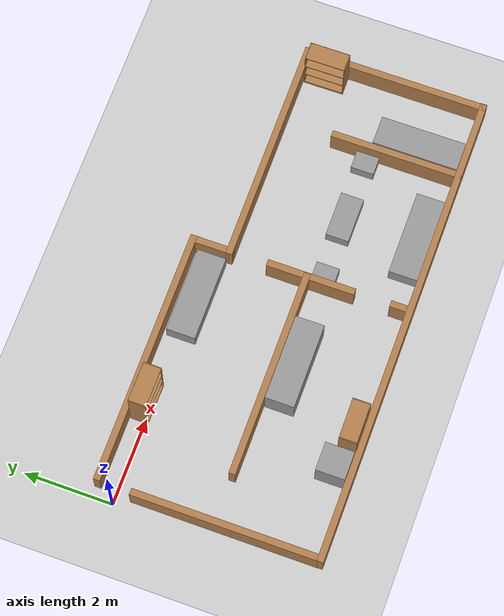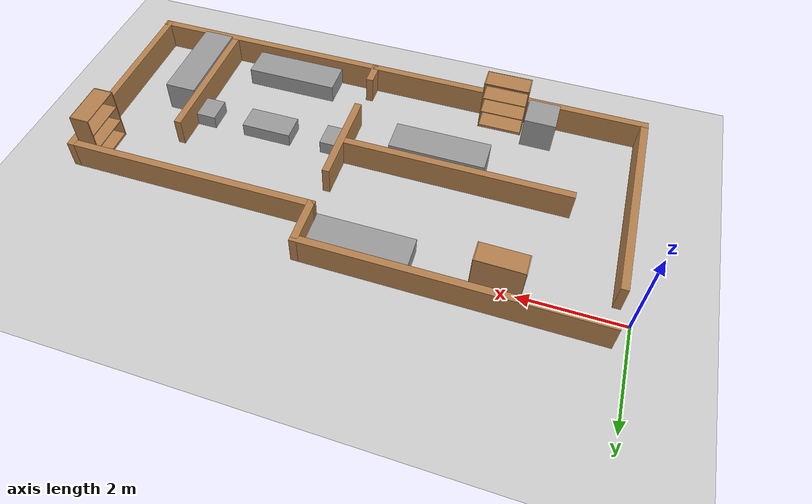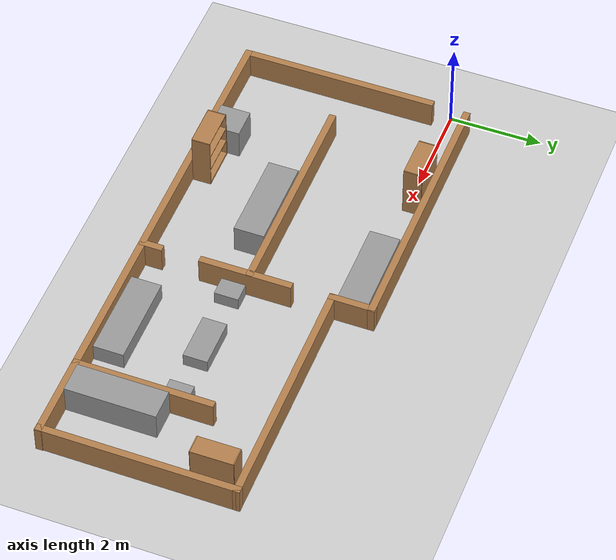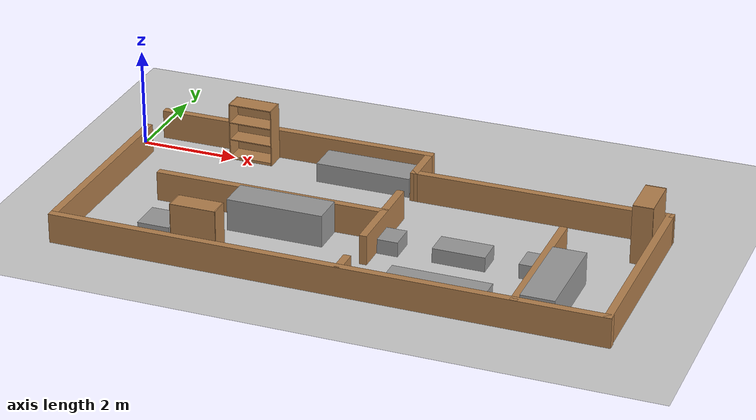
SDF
<sdf version="1.7">
 <world name="default">
  <light name="sun" type="directional">
   <pose>0 0 10 0 -0 0</pose>
   <diffuse>0.8 0.8 0.8 1</diffuse>
   <specular>0.2 0.2 0.2 1</specular>
   <attenuation>
    <range>1000</range>
    <constant>0.9</constant>
    <linear>0.01</linear>
    <quadratic>0.001</quadratic>
   </attenuation>
   <direction>-0.5 0.1 -0.9</direction>
   <spot><inner_angle>0</inner_angle><outer_angle>0</outer_angle><falloff>0</falloff></spot>
  </light>
  <model name="ground_plane">
   <static>1</static>
   <link name="link">
    <collision name="collision">
     <geometry><plane><normal>0 0 1</normal><size>100 100</size></plane></geometry>
     <surface>
      <contact><collide_bitmask>65535</collide_bitmask></contact>
      <friction><ode><mu>100</mu><mu2>50</mu2></ode></friction>
     </surface>
    </collision>
    <visual name="visual">
     <cast_shadows>0</cast_shadows>
     <geometry><plane><normal>0 0 1</normal><size>100 100</size></plane></geometry>
     <material>
      <script><uri>file://media/materials/scripts/gazebo.material</uri><name>Gazebo/Grey</name></script>
     </material>
    </visual>
   </link>
  </model>
  <gravity>0 0 -9.8</gravity>
  <magnetic_field>6e-06 2.3e-05 -4.2e-05</magnetic_field>
  <atmosphere type="adiabatic"/>
  <physics type="ode">
   <max_step_size>0.001</max_step_size>
   <real_time_factor>1</real_time_factor>
   <real_time_update_rate>1000</real_time_update_rate>
  </physics>
  <scene><ambient>0.4 0.4 0.4 1</ambient><background>0.7 0.7 0.7 1</background><shadows>1</shadows></scene>
  <spherical_coordinates>
   <surface_model>EARTH_WGS84</surface_model>
   <latitude_deg>0</latitude_deg>
   <longitude_deg>0</longitude_deg>
   <elevation>0</elevation>
   <heading_deg>0</heading_deg>
  </spherical_coordinates>
  <model name="LAR_test">
   <pose>5.594 -2.047 0 0 -0 0</pose>
   <link name="Wall_76">
    <collision name="Wall_76_Collision">
     <geometry><box><size>5.82713 0.15 0.6</size></box></geometry>
     <pose>0 0 0.3 0 -0 0</pose>
    </collision>
    <visual name="Wall_76_Visual">
     <pose>0 0 0.3 0 -0 0</pose>
     <geometry><box><size>5.82713 0.15 0.6</size></box></geometry>
     <material>
      <script><uri>file://media/materials/scripts/gazebo.material</uri><name>Gazebo/Wood</name></script>
      <ambient>1 1 1 1</ambient>
     </material>
     <meta><layer>0</layer></meta>
    </visual>
    <pose>-2.4315 2.473 0 0 -0 3.14159</pose>
   </link>
   <link name="Wall_78">
    <collision name="Wall_78_Collision">
     <geometry><box><size>1 0.15 0.6</size></box></geometry>
     <pose>0 0 0.3 0 -0 0</pose>
    </collision>
    <visual name="Wall_78_Visual">
     <pose>0 0 0.3 0 -0 0</pose>
     <geometry><box><size>1 0.15 0.6</size></box></geometry>
     <material>
      <script><uri>file://media/materials/scripts/gazebo.material</uri><name>Gazebo/Wood</name></script>
      <ambient>1 1 1 1</ambient>
     </material>
     <meta><layer>0</layer></meta>
    </visual>
    <pose>0.407 2.048 0 0 -0 -1.5708</pose>
   </link>
   <link name="Wall_80">
    <collision name="Wall_80_Collision">
     <geometry><box><size>5.25 0.15 0.6</size></box></geometry>
     <pose>0 0 0.3 0 -0 0</pose>
    </collision>
    <visual name="Wall_80_Visual">
     <pose>0 0 0.3 0 -0 0</pose>
     <geometry><box><size>5.25 0.15 0.6</size></box></geometry>
     <material>
      <script><uri>file://media/materials/scripts/gazebo.material</uri><name>Gazebo/Wood</name></script>
      <ambient>1 1 1 1</ambient>
     </material>
     <meta><layer>0</layer></meta>
    </visual>
    <pose>2.957 1.6285 0 0 -0 0.002157</pose>
   </link>
   <link name="Wall_82">
    <collision name="Wall_82_Collision">
     <geometry><box><size>4.24965 0.15 0.6</size></box></geometry>
     <pose>0 0 0.3 0 -0 0</pose>
    </collision>
    <visual name="Wall_82_Visual">
     <pose>0 0 0.3 0 -0 0</pose>
     <geometry><box><size>4.24965 0.15 0.6</size></box></geometry>
     <material>
      <script><uri>file://media/materials/scripts/gazebo.material</uri><name>Gazebo/Wood</name></script>
      <ambient>1 1 1 1</ambient>
     </material>
     <meta><layer>0</layer></meta>
    </visual>
    <pose>5.507 -0.4155 0 0 -0 -1.5708</pose>
   </link>
   <link name="Wall_84">
    <collision name="Wall_84_Collision">
     <geometry><box><size>4.15 0.15 0.6</size></box></geometry>
     <pose>0 0 0.3 0 -0 0</pose>
    </collision>
    <visual name="Wall_84_Visual">
     <pose>0 0 0.3 0 -0 0</pose>
     <geometry><box><size>4.15 0.15 0.6</size></box></geometry>
     <material>
      <script><uri>file://media/materials/scripts/gazebo.material</uri><name>Gazebo/Wood</name></script>
      <ambient>1 1 1 1</ambient>
     </material>
     <meta><layer>0</layer></meta>
    </visual>
    <pose>-5.335 -0.35 0 0 -0 -1.5708</pose>
   </link>
   <link name="Wall_86">
    <collision name="Wall_86_Collision">
     <geometry><box><size>11 0.15 0.6</size></box></geometry>
     <pose>0 0 0.3 0 -0 0</pose>
    </collision>
    <visual name="Wall_86_Visual">
     <pose>0 0 0.3 0 -0 0</pose>
     <geometry><box><size>11 0.15 0.6</size></box></geometry>
     <material>
      <script><uri>file://media/materials/scripts/gazebo.material</uri><name>Gazebo/Wood</name></script>
      <ambient>1 1 1 1</ambient>
     </material>
     <meta><layer>0</layer></meta>
    </visual>
    <pose>0.094 -2.473 0 0 -0 0</pose>
   </link>
   <link name="Wall_91">
    <collision name="Wall_91_Collision">
     <geometry><box><size>2 0.15 0.6</size></box></geometry>
     <pose>0 0 0.3 0 -0 0</pose>
    </collision>
    <visual name="Wall_91_Visual">
     <pose>0 0 0.3 0 -0 0</pose>
     <geometry><box><size>2 0.15 0.6</size></box></geometry>
     <material>
      <script><uri>file://media/materials/scripts/gazebo.material</uri><name>Gazebo/Wood</name></script>
      <ambient>1 1 1 1</ambient>
     </material>
     <meta><layer>0</layer></meta>
    </visual>
    <pose>0.426 -0.226 0 0 -0 -1.5708</pose>
   </link>
   <link name="Wall_93">
    <collision name="Wall_93_Collision">
     <geometry><box><size>0.5 0.15 0.6</size></box></geometry>
     <pose>0 0 0.3 0 -0 0</pose>
    </collision>
    <visual name="Wall_93_Visual">
     <pose>0 0 0.3 0 -0 0</pose>
     <geometry><box><size>0.5 0.15 0.6</size></box></geometry>
     <material>
      <script><uri>file://media/materials/scripts/gazebo.material</uri><name>Gazebo/Wood</name></script>
      <ambient>1 1 1 1</ambient>
     </material>
     <meta><layer>0</layer></meta>
    </visual>
    <pose>0.437 -2.276 0 0 -0 1.5708</pose>
   </link>
   <link name="Wall_96">
    <collision name="Wall_96_Collision">
     <geometry><box><size>4.75 0.15 0.6</size></box></geometry>
     <pose>0 0 0.3 0 -0 0</pose>
    </collision>
    <visual name="Wall_96_Visual">
     <pose>0 0 0.3 0 -0 0</pose>
     <geometry><box><size>4.75 0.15 0.6</size></box></geometry>
     <material>
      <script><uri>file://media/materials/scripts/gazebo.material</uri><name>Gazebo/Wood</name></script>
      <ambient>1 1 1 1</ambient>
     </material>
     <meta><layer>0</layer></meta>
    </visual>
    <pose>-1.886 -0.131 0 0 -0 3.14159</pose>
   </link>
   <link name="Wall_98">
    <collision name="Wall_98_Collision">
     <geometry><box><size>3 0.15 0.6</size></box></geometry>
     <pose>0 0 0.3 0 -0 0</pose>
    </collision>
    <visual name="Wall_98_Visual">
     <pose>0 0 0.3 0 -0 0</pose>
     <geometry><box><size>3 0.15 0.6</size></box></geometry>
     <material>
      <script><uri>file://media/materials/scripts/gazebo.material</uri><name>Gazebo/Wood</name></script>
      <ambient>1 1 1 1</ambient>
     </material>
     <meta><layer>0</layer></meta>
    </visual>
    <pose>3.78 -1.037 0 0 -0 1.5708</pose>
   </link>
   <static>1</static>
  </model>
  <model name="bookshelf">
   <static>1</static>
   <link name="link">
    <inertial><mass>1</mass></inertial>
    <collision name="back">
     <pose>0 0.005 0.6 0 -0 0</pose>
     <geometry><box><size>0.9 0.01 1.2</size></box></geometry>
    </collision>
    <visual name="visual1">
     <pose>0 0.005 0.6 0 -0 0</pose>
     <geometry><box><size>0.9 0.01 1.2</size></box></geometry>
     <material>
      <script><uri>file://media/materials/scripts/gazebo.material</uri><name>Gazebo/Wood</name></script>
     </material>
    </visual>
    <collision name="left_side">
     <pose>0.45 -0.195 0.6 0 -0 0</pose>
     <geometry><box><size>0.02 0.4 1.2</size></box></geometry>
    </collision>
    <visual name="visual2">
     <pose>0.45 -0.195 0.6 0 -0 0</pose>
     <geometry><box><size>0.02 0.4 1.2</size></box></geometry>
     <material>
      <script><uri>file://media/materials/scripts/gazebo.material</uri><name>Gazebo/Wood</name></script>
     </material>
    </visual>
    <collision name="right_side">
     <pose>-0.45 -0.195 0.6 0 -0 0</pose>
     <geometry><box><size>0.02 0.4 1.2</size></box></geometry>
    </collision>
    <visual name="visual3">
     <pose>-0.45 -0.195 0.6 0 -0 0</pose>
     <geometry><box><size>0.02 0.4 1.2</size></box></geometry>
     <material>
      <script><uri>file://media/materials/scripts/gazebo.material</uri><name>Gazebo/Wood</name></script>
     </material>
    </visual>
    <collision name="bottom">
     <pose>0 -0.195 0.03 0 -0 0</pose>
     <geometry><box><size>0.88 0.4 0.06</size></box></geometry>
    </collision>
    <visual name="visual4">
     <pose>0 -0.195 0.03 0 -0 0</pose>
     <geometry><box><size>0.88 0.4 0.06</size></box></geometry>
     <material>
      <script><uri>file://media/materials/scripts/gazebo.material</uri><name>Gazebo/Wood</name></script>
     </material>
    </visual>
    <collision name="top">
     <pose>0 -0.195 1.19 0 -0 0</pose>
     <geometry><box><size>0.88 0.4 0.02</size></box></geometry>
    </collision>
    <visual name="visual5">
     <pose>0 -0.195 1.19 0 -0 0</pose>
     <geometry><box><size>0.88 0.4 0.02</size></box></geometry>
     <material>
      <script><uri>file://media/materials/scripts/gazebo.material</uri><name>Gazebo/Wood</name></script>
     </material>
    </visual>
    <collision name="low_shelf">
     <pose>0 -0.195 0.43 0 -0 0</pose>
     <geometry><box><size>0.88 0.4 0.02</size></box></geometry>
    </collision>
    <visual name="visual6">
     <pose>0 -0.195 0.43 0 -0 0</pose>
     <geometry><box><size>0.88 0.4 0.02</size></box></geometry>
     <material>
      <script><uri>file://media/materials/scripts/gazebo.material</uri><name>Gazebo/Wood</name></script>
     </material>
    </visual>
    <collision name="high_shelf">
     <pose>0 -0.195 0.8 0 -0 0</pose>
     <geometry><box><size>0.88 0.4 0.02</size></box></geometry>
    </collision>
    <visual name="visual7">
     <pose>0 -0.195 0.8 0 -0 0</pose>
     <geometry><box><size>0.88 0.4 0.02</size></box></geometry>
     <material>
      <script><uri>file://media/materials/scripts/gazebo.material</uri><name>Gazebo/Wood</name></script>
     </material>
    </visual>
   </link>
   <pose>3.11135 -4.44158 0 0 0 -3.13518</pose>
  </model>
  <model name="bookshelf_0">
   <static>1</static>
   <link name="link">
    <inertial><mass>1</mass></inertial>
    <collision name="back">
     <pose>0 0.005 0.6 0 -0 0</pose>
     <geometry><box><size>0.9 0.01 1.2</size></box></geometry>
    </collision>
    <visual name="visual1">
     <pose>0 0.005 0.6 0 -0 0</pose>
     <geometry><box><size>0.9 0.01 1.2</size></box></geometry>
     <material>
      <script><uri>file://media/materials/scripts/gazebo.material</uri><name>Gazebo/Wood</name></script>
     </material>
    </visual>
    <collision name="left_side">
     <pose>0.45 -0.195 0.6 0 -0 0</pose>
     <geometry><box><size>0.02 0.4 1.2</size></box></geometry>
    </collision>
    <visual name="visual2">
     <pose>0.45 -0.195 0.6 0 -0 0</pose>
     <geometry><box><size>0.02 0.4 1.2</size></box></geometry>
     <material>
      <script><uri>file://media/materials/scripts/gazebo.material</uri><name>Gazebo/Wood</name></script>
     </material>
    </visual>
    <collision name="right_side">
     <pose>-0.45 -0.195 0.6 0 -0 0</pose>
     <geometry><box><size>0.02 0.4 1.2</size></box></geometry>
    </collision>
    <visual name="visual3">
     <pose>-0.45 -0.195 0.6 0 -0 0</pose>
     <geometry><box><size>0.02 0.4 1.2</size></box></geometry>
     <material>
      <script><uri>file://media/materials/scripts/gazebo.material</uri><name>Gazebo/Wood</name></script>
     </material>
    </visual>
    <collision name="bottom">
     <pose>0 -0.195 0.03 0 -0 0</pose>
     <geometry><box><size>0.88 0.4 0.06</size></box></geometry>
    </collision>
    <visual name="visual4">
     <pose>0 -0.195 0.03 0 -0 0</pose>
     <geometry><box><size>0.88 0.4 0.06</size></box></geometry>
     <material>
      <script><uri>file://media/materials/scripts/gazebo.material</uri><name>Gazebo/Wood</name></script>
     </material>
    </visual>
    <collision name="top">
     <pose>0 -0.195 1.19 0 -0 0</pose>
     <geometry><box><size>0.88 0.4 0.02</size></box></geometry>
    </collision>
    <visual name="visual5">
     <pose>0 -0.195 1.19 0 -0 0</pose>
     <geometry><box><size>0.88 0.4 0.02</size></box></geometry>
     <material>
      <script><uri>file://media/materials/scripts/gazebo.material</uri><name>Gazebo/Wood</name></script>
     </material>
    </visual>
    <collision name="low_shelf">
     <pose>0 -0.195 0.43 0 -0 0</pose>
     <geometry><box><size>0.88 0.4 0.02</size></box></geometry>
    </collision>
    <visual name="visual6">
     <pose>0 -0.195 0.43 0 -0 0</pose>
     <geometry><box><size>0.88 0.4 0.02</size></box></geometry>
     <material>
      <script><uri>file://media/materials/scripts/gazebo.material</uri><name>Gazebo/Wood</name></script>
     </material>
    </visual>
    <collision name="high_shelf">
     <pose>0 -0.195 0.8 0 -0 0</pose>
     <geometry><box><size>0.88 0.4 0.02</size></box></geometry>
    </collision>
    <visual name="visual7">
     <pose>0 -0.195 0.8 0 -0 0</pose>
     <geometry><box><size>0.88 0.4 0.02</size></box></geometry>
     <material>
      <script><uri>file://media/materials/scripts/gazebo.material</uri><name>Gazebo/Wood</name></script>
     </material>
    </visual>
   </link>
   <pose>11.0152 -0.959558 0 0 0 -1.56507</pose>
  </model>
  <model name="unit_box_1">
   <link name="link">
    <inertial>
     <mass>1</mass>
     <inertia>
      <ixx>0.166667</ixx>
      <ixy>0</ixy>
      <ixz>0</ixz>
      <iyy>0.166667</iyy>
      <iyz>0</iyz>
      <izz>0.166667</izz>
     </inertia>
    </inertial>
    <visual name="visual">
     <geometry><box><size>1.94128 0.654649 0.397354</size></box></geometry>
     <material>
      <script><name>Gazebo/Grey</name><uri>file://media/materials/scripts/gazebo.material</uri></script>
      <shader type="pixel"><normal_map>__default__</normal_map></shader>
      <ambient>0.729 0.741 0.714 1</ambient>
      <diffuse>0.7 0.7 0.7 1</diffuse>
      <specular>0.01 0.01 0.01 1</specular>
      <emissive>0 0 0 1</emissive>
     </material>
    </visual>
    <collision name="collision">
     <geometry><box><size>1.94128 0.654649 0.397354</size></box></geometry>
     <surface>
      <friction>
       <ode><mu>1</mu><mu2>1</mu2><fdir1>0 0 0</fdir1><slip1>0</slip1><slip2>0</slip2></ode>
       <torsional>
        <coefficient>1</coefficient>
        <patch_radius>0</patch_radius>
        <surface_radius>0</surface_radius>
        <use_patch_radius>1</use_patch_radius>
        <ode><slip>0</slip></ode>
       </torsional>
      </friction>
      <bounce><restitution_coefficient>0</restitution_coefficient><threshold>1e+06</threshold></bounce>
      <contact>
       <collide_without_contact>0</collide_without_contact>
       <collide_without_contact_bitmask>1</collide_without_contact_bitmask>
       <collide_bitmask>1</collide_bitmask>
       <ode>
        <soft_cfm>0</soft_cfm>
        <soft_erp>0.2</soft_erp>
        <kp>1e+13</kp>
        <kd>1</kd>
        <max_vel>0.01</max_vel>
        <min_depth>0</min_depth>
       </ode>
       <bullet>
        <split_impulse>1</split_impulse>
        <split_impulse_penetration_threshold>-0.01</split_impulse_penetration_threshold>
        <soft_cfm>0</soft_cfm>
        <soft_erp>0.2</soft_erp>
        <kp>1e+13</kp>
        <kd>1</kd>
       </bullet>
      </contact>
     </surface>
    </collision>
   </link>
   <static>0</static>
   <pose>7.76468 -4.1147 0.198676 3e-06 -0 0</pose>
  </model>
  <model name="unit_box_1_clone">
   <link name="link">
    <inertial>
     <mass>1</mass>
     <inertia>
      <ixx>0.166667</ixx>
      <ixy>0</ixy>
      <ixz>0</ixz>
      <iyy>0.166667</iyy>
      <iyz>0</iyz>
      <izz>0.166667</izz>
     </inertia>
    </inertial>
    <visual name="visual">
     <geometry><box><size>1.94129 0.654649 0.397354</size></box></geometry>
     <material>
      <script><name>Gazebo/Grey</name><uri>file://media/materials/scripts/gazebo.material</uri></script>
      <shader type="pixel"><normal_map>__default__</normal_map></shader>
      <ambient>0.729 0.741 0.714 1</ambient>
      <diffuse>0.7 0.7 0.7 1</diffuse>
      <specular>0.01 0.01 0.01 1</specular>
      <emissive>0 0 0 1</emissive>
     </material>
    </visual>
    <collision name="collision">
     <geometry><box><size>1.94129 0.654649 0.397354</size></box></geometry>
     <surface>
      <friction>
       <ode><mu>1</mu><mu2>1</mu2><fdir1>0 0 0</fdir1><slip1>0</slip1><slip2>0</slip2></ode>
       <torsional>
        <coefficient>1</coefficient>
        <patch_radius>0</patch_radius>
        <surface_radius>0</surface_radius>
        <use_patch_radius>1</use_patch_radius>
        <ode><slip>0</slip></ode>
       </torsional>
      </friction>
      <bounce><restitution_coefficient>0</restitution_coefficient><threshold>1e+06</threshold></bounce>
      <contact>
       <collide_without_contact>0</collide_without_contact>
       <collide_without_contact_bitmask>1</collide_without_contact_bitmask>
       <collide_bitmask>1</collide_bitmask>
       <ode>
        <soft_cfm>0</soft_cfm>
        <soft_erp>0.2</soft_erp>
        <kp>1e+13</kp>
        <kd>1</kd>
        <max_vel>0.01</max_vel>
        <min_depth>0</min_depth>
       </ode>
       <bullet>
        <split_impulse>1</split_impulse>
        <split_impulse_penetration_threshold>-0.01</split_impulse_penetration_threshold>
        <soft_cfm>0</soft_cfm>
        <soft_erp>0.2</soft_erp>
        <kp>1e+13</kp>
        <kd>1</kd>
       </bullet>
      </contact>
     </surface>
    </collision>
   </link>
   <static>0</static>
   <pose>4.8933 -0.057546 0.198676 3e-06 -0 0</pose>
  </model>
  <model name="unit_box_1_clone_0">
   <link name="link">
    <inertial>
     <mass>1</mass>
     <inertia>
      <ixx>0.166667</ixx>
      <ixy>0</ixy>
      <ixz>0</ixz>
      <iyy>0.166667</iyy>
      <iyz>0</iyz>
      <izz>0.166667</izz>
     </inertia>
    </inertial>
    <visual name="visual">
     <geometry><box><size>1.94129 0.654649 0.65354</size></box></geometry>
     <material>
      <script><name>Gazebo/Grey</name><uri>file://media/materials/scripts/gazebo.material</uri></script>
      <shader type="pixel"><normal_map>__default__</normal_map></shader>
      <ambient>0.729 0.741 0.714 1</ambient>
      <diffuse>0.7 0.7 0.7 1</diffuse>
      <specular>0.01 0.01 0.01 1</specular>
      <emissive>0 0 0 1</emissive>
     </material>
    </visual>
    <collision name="collision">
     <geometry><box><size>1.94129 0.654649 0.65354</size></box></geometry>
     <surface>
      <friction>
       <ode><mu>1</mu><mu2>1</mu2><fdir1>0 0 0</fdir1><slip1>0</slip1><slip2>0</slip2></ode>
       <torsional>
        <coefficient>1</coefficient>
        <patch_radius>0</patch_radius>
        <surface_radius>0</surface_radius>
        <use_patch_radius>1</use_patch_radius>
        <ode><slip>0</slip></ode>
       </torsional>
      </friction>
      <bounce><restitution_coefficient>0</restitution_coefficient><threshold>1e+06</threshold></bounce>
      <contact>
       <collide_without_contact>0</collide_without_contact>
       <collide_without_contact_bitmask>1</collide_without_contact_bitmask>
       <collide_bitmask>1</collide_bitmask>
       <ode>
        <soft_cfm>0</soft_cfm>
        <soft_erp>0.2</soft_erp>
        <kp>1e+13</kp>
        <kd>1</kd>
        <max_vel>0.01</max_vel>
        <min_depth>0</min_depth>
       </ode>
       <bullet>
        <split_impulse>1</split_impulse>
        <split_impulse_penetration_threshold>-0.01</split_impulse_penetration_threshold>
        <soft_cfm>0</soft_cfm>
        <soft_erp>0.2</soft_erp>
        <kp>1e+13</kp>
        <kd>1</kd>
       </bullet>
      </contact>
     </surface>
    </collision>
   </link>
   <static>0</static>
   <pose>4.08465 -2.59077 0.32677 1e-06 -0 0</pose>
  </model>
  <model name="unit_box_1_clone_1">
   <link name="link">
    <inertial>
     <mass>1</mass>
     <inertia>
      <ixx>0.166667</ixx>
      <ixy>0</ixy>
      <ixz>0</ixz>
      <iyy>0.166667</iyy>
      <iyz>0</iyz>
      <izz>0.166667</izz>
     </inertia>
    </inertial>
    <visual name="visual">
     <geometry><box><size>0.642342 0.654649 0.68811</size></box></geometry>
     <material>
      <script><name>Gazebo/Grey</name><uri>file://media/materials/scripts/gazebo.material</uri></script>
      <shader type="pixel"><normal_map>__default__</normal_map></shader>
      <ambient>0.729 0.741 0.714 1</ambient>
      <diffuse>0.7 0.7 0.7 1</diffuse>
      <specular>0.01 0.01 0.01 1</specular>
      <emissive>0 0 0 1</emissive>
     </material>
    </visual>
    <collision name="collision">
     <geometry><box><size>0.642342 0.654649 0.68811</size></box></geometry>
     <surface>
      <friction>
       <ode><mu>1</mu><mu2>1</mu2><fdir1>0 0 0</fdir1><slip1>0</slip1><slip2>0</slip2></ode>
       <torsional>
        <coefficient>1</coefficient>
        <patch_radius>0</patch_radius>
        <surface_radius>0</surface_radius>
        <use_patch_radius>1</use_patch_radius>
        <ode><slip>0</slip></ode>
       </torsional>
      </friction>
      <bounce><restitution_coefficient>0</restitution_coefficient><threshold>1e+06</threshold></bounce>
      <contact>
       <collide_without_contact>0</collide_without_contact>
       <collide_without_contact_bitmask>1</collide_without_contact_bitmask>
       <collide_bitmask>1</collide_bitmask>
       <ode>
        <soft_cfm>0</soft_cfm>
        <soft_erp>0.2</soft_erp>
        <kp>1e+13</kp>
        <kd>1</kd>
        <max_vel>0.01</max_vel>
        <min_depth>0</min_depth>
       </ode>
       <bullet>
        <split_impulse>1</split_impulse>
        <split_impulse_penetration_threshold>-0.01</split_impulse_penetration_threshold>
        <soft_cfm>0</soft_cfm>
        <soft_erp>0.2</soft_erp>
        <kp>1e+13</kp>
        <kd>1</kd>
       </bullet>
      </contact>
     </surface>
    </collision>
   </link>
   <static>0</static>
   <pose>2.2988 -4.1125 0.344055 0 -0 0</pose>
  </model>
  <model name="bookshelf_clone">
   <static>1</static>
   <link name="link">
    <inertial><mass>1</mass></inertial>
    <collision name="back">
     <pose>0 0.005 0.6 0 -0 0</pose>
     <geometry><box><size>0.9 0.01 1.2</size></box></geometry>
    </collision>
    <visual name="visual1">
     <pose>0 0.005 0.6 0 -0 0</pose>
     <geometry><box><size>0.9 0.01 1.2</size></box></geometry>
     <material>
      <script><uri>file://media/materials/scripts/gazebo.material</uri><name>Gazebo/Wood</name></script>
     </material>
    </visual>
    <collision name="left_side">
     <pose>0.45 -0.195 0.6 0 -0 0</pose>
     <geometry><box><size>0.02 0.4 1.2</size></box></geometry>
    </collision>
    <visual name="visual2">
     <pose>0.45 -0.195 0.6 0 -0 0</pose>
     <geometry><box><size>0.02 0.4 1.2</size></box></geometry>
     <material>
      <script><uri>file://media/materials/scripts/gazebo.material</uri><name>Gazebo/Wood</name></script>
     </material>
    </visual>
    <collision name="right_side">
     <pose>-0.45 -0.195 0.6 0 -0 0</pose>
     <geometry><box><size>0.02 0.4 1.2</size></box></geometry>
    </collision>
    <visual name="visual3">
     <pose>-0.45 -0.195 0.6 0 -0 0</pose>
     <geometry><box><size>0.02 0.4 1.2</size></box></geometry>
     <material>
      <script><uri>file://media/materials/scripts/gazebo.material</uri><name>Gazebo/Wood</name></script>
     </material>
    </visual>
    <collision name="bottom">
     <pose>0 -0.195 0.03 0 -0 0</pose>
     <geometry><box><size>0.88 0.4 0.06</size></box></geometry>
    </collision>
    <visual name="visual4">
     <pose>0 -0.195 0.03 0 -0 0</pose>
     <geometry><box><size>0.88 0.4 0.06</size></box></geometry>
     <material>
      <script><uri>file://media/materials/scripts/gazebo.material</uri><name>Gazebo/Wood</name></script>
     </material>
    </visual>
    <collision name="top">
     <pose>0 -0.195 1.19 0 -0 0</pose>
     <geometry><box><size>0.88 0.4 0.02</size></box></geometry>
    </collision>
    <visual name="visual5">
     <pose>0 -0.195 1.19 0 -0 0</pose>
     <geometry><box><size>0.88 0.4 0.02</size></box></geometry>
     <material>
      <script><uri>file://media/materials/scripts/gazebo.material</uri><name>Gazebo/Wood</name></script>
     </material>
    </visual>
    <collision name="low_shelf">
     <pose>0 -0.195 0.43 0 -0 0</pose>
     <geometry><box><size>0.88 0.4 0.02</size></box></geometry>
    </collision>
    <visual name="visual6">
     <pose>0 -0.195 0.43 0 -0 0</pose>
     <geometry><box><size>0.88 0.4 0.02</size></box></geometry>
     <material>
      <script><uri>file://media/materials/scripts/gazebo.material</uri><name>Gazebo/Wood</name></script>
     </material>
    </visual>
    <collision name="high_shelf">
     <pose>0 -0.195 0.8 0 -0 0</pose>
     <geometry><box><size>0.88 0.4 0.02</size></box></geometry>
    </collision>
    <visual name="visual7">
     <pose>0 -0.195 0.8 0 -0 0</pose>
     <geometry><box><size>0.88 0.4 0.02</size></box></geometry>
     <material>
      <script><uri>file://media/materials/scripts/gazebo.material</uri><name>Gazebo/Wood</name></script>
     </material>
    </visual>
   </link>
   <pose>2.36725 0.322419 -0 0 -0 -0.01041</pose>
  </model>
  <model name="unit_box_1_clone_2">
   <link name="link">
    <inertial>
     <mass>1</mass>
     <inertia>
      <ixx>0.166667</ixx>
      <ixy>0</ixy>
      <ixz>0</ixz>
      <iyy>0.166667</iyy>
      <iyz>0</iyz>
      <izz>0.166667</izz>
     </inertia>
    </inertial>
    <visual name="visual">
     <geometry><box><size>1.04025 0.52304 0.295985</size></box></geometry>
     <material>
      <script><name>Gazebo/Grey</name><uri>file://media/materials/scripts/gazebo.material</uri></script>
      <shader type="pixel"><normal_map>__default__</normal_map></shader>
      <ambient>0.729 0.741 0.714 1</ambient>
      <diffuse>0.7 0.7 0.7 1</diffuse>
      <specular>0.01 0.01 0.01 1</specular>
      <emissive>0 0 0 1</emissive>
     </material>
    </visual>
    <collision name="collision">
     <geometry><box><size>1.04025 0.52304 0.295985</size></box></geometry>
     <surface>
      <friction>
       <ode><mu>1</mu><mu2>1</mu2><fdir1>0 0 0</fdir1><slip1>0</slip1><slip2>0</slip2></ode>
       <torsional>
        <coefficient>1</coefficient>
        <patch_radius>0</patch_radius>
        <surface_radius>0</surface_radius>
        <use_patch_radius>1</use_patch_radius>
        <ode><slip>0</slip></ode>
       </torsional>
      </friction>
      <bounce><restitution_coefficient>0</restitution_coefficient><threshold>1e+06</threshold></bounce>
      <contact>
       <collide_without_contact>0</collide_without_contact>
       <collide_without_contact_bitmask>1</collide_without_contact_bitmask>
       <collide_bitmask>1</collide_bitmask>
       <ode>
        <soft_cfm>0</soft_cfm>
        <soft_erp>0.2</soft_erp>
        <kp>1e+13</kp>
        <kd>1</kd>
        <max_vel>0.01</max_vel>
        <min_depth>0</min_depth>
       </ode>
       <bullet>
        <split_impulse>1</split_impulse>
        <split_impulse_penetration_threshold>-0.01</split_impulse_penetration_threshold>
        <soft_cfm>0</soft_cfm>
        <soft_erp>0.2</soft_erp>
        <kp>1e+13</kp>
        <kd>1</kd>
       </bullet>
      </contact>
     </surface>
    </collision>
   </link>
   <static>0</static>
   <pose>7.70832 -2.47157 0.147992 -0 -0 -0</pose>
  </model>
  <model name="unit_box_1_clone_2_clone">
   <link name="link">
    <inertial>
     <mass>1</mass>
     <inertia>
      <ixx>0.166667</ixx>
      <ixy>0</ixy>
      <ixz>0</ixz>
      <iyy>0.166667</iyy>
      <iyz>0</iyz>
      <izz>0.166667</izz>
     </inertia>
    </inertial>
    <visual name="visual">
     <geometry><box><size>0.411162 0.52304 0.295985</size></box></geometry>
     <material>
      <script><name>Gazebo/Grey</name><uri>file://media/materials/scripts/gazebo.material</uri></script>
      <shader type="pixel"><normal_map>__default__</normal_map></shader>
      <ambient>0.729 0.741 0.714 1</ambient>
      <diffuse>0.7 0.7 0.7 1</diffuse>
      <specular>0.01 0.01 0.01 1</specular>
      <emissive>0 0 0 1</emissive>
     </material>
    </visual>
    <collision name="collision">
     <geometry><box><size>0.411162 0.52304 0.295985</size></box></geometry>
     <surface>
      <friction>
       <ode><mu>1</mu><mu2>1</mu2><fdir1>0 0 0</fdir1><slip1>0</slip1><slip2>0</slip2></ode>
       <torsional>
        <coefficient>1</coefficient>
        <patch_radius>0</patch_radius>
        <surface_radius>0</surface_radius>
        <use_patch_radius>1</use_patch_radius>
        <ode><slip>0</slip></ode>
       </torsional>
      </friction>
      <bounce><restitution_coefficient>0</restitution_coefficient><threshold>1e+06</threshold></bounce>
      <contact>
       <collide_without_contact>0</collide_without_contact>
       <collide_without_contact_bitmask>1</collide_without_contact_bitmask>
       <collide_bitmask>1</collide_bitmask>
       <ode>
        <soft_cfm>0</soft_cfm>
        <soft_erp>0.2</soft_erp>
        <kp>1e+13</kp>
        <kd>1</kd>
        <max_vel>0.01</max_vel>
        <min_depth>0</min_depth>
       </ode>
       <bullet>
        <split_impulse>1</split_impulse>
        <split_impulse_penetration_threshold>-0.01</split_impulse_penetration_threshold>
        <soft_cfm>0</soft_cfm>
        <soft_erp>0.2</soft_erp>
        <kp>1e+13</kp>
        <kd>1</kd>
       </bullet>
      </contact>
     </surface>
    </collision>
   </link>
   <static>0</static>
   <pose>9.08726 -2.46962 0.147992 0 -0 0</pose>
  </model>
  <model name="unit_box_1_clone_2_clone_clone">
   <link name="link">
    <inertial>
     <mass>1</mass>
     <inertia>
      <ixx>0.166667</ixx>
      <ixy>0</ixy>
      <ixz>0</ixz>
      <iyy>0.166667</iyy>
      <iyz>0</iyz>
      <izz>0.166667</izz>
     </inertia>
    </inertial>
    <visual name="visual">
     <geometry><box><size>0.411162 0.52304 0.295985</size></box></geometry>
     <material>
      <script><name>Gazebo/Grey</name><uri>file://media/materials/scripts/gazebo.material</uri></script>
      <shader type="pixel"><normal_map>__default__</normal_map></shader>
      <ambient>0.729 0.741 0.714 1</ambient>
      <diffuse>0.7 0.7 0.7 1</diffuse>
      <specular>0.01 0.01 0.01 1</specular>
      <emissive>0 0 0 1</emissive>
     </material>
    </visual>
    <collision name="collision">
     <geometry><box><size>0.411162 0.52304 0.295985</size></box></geometry>
     <surface>
      <friction>
       <ode><mu>1</mu><mu2>1</mu2><fdir1>0 0 0</fdir1><slip1>0</slip1><slip2>0</slip2></ode>
       <torsional>
        <coefficient>1</coefficient>
        <patch_radius>0</patch_radius>
        <surface_radius>0</surface_radius>
        <use_patch_radius>1</use_patch_radius>
        <ode><slip>0</slip></ode>
       </torsional>
      </friction>
      <bounce><restitution_coefficient>0</restitution_coefficient><threshold>1e+06</threshold></bounce>
      <contact>
       <collide_without_contact>0</collide_without_contact>
       <collide_without_contact_bitmask>1</collide_without_contact_bitmask>
       <collide_bitmask>1</collide_bitmask>
       <ode>
        <soft_cfm>0</soft_cfm>
        <soft_erp>0.2</soft_erp>
        <kp>1e+13</kp>
        <kd>1</kd>
        <max_vel>0.01</max_vel>
        <min_depth>0</min_depth>
       </ode>
       <bullet>
        <split_impulse>1</split_impulse>
        <split_impulse_penetration_threshold>-0.01</split_impulse_penetration_threshold>
        <soft_cfm>0</soft_cfm>
        <soft_erp>0.2</soft_erp>
        <kp>1e+13</kp>
        <kd>1</kd>
       </bullet>
      </contact>
     </surface>
    </collision>
   </link>
   <static>0</static>
   <pose>6.31233 -2.50446 0.147992 0 -0 0</pose>
  </model>
  <model name="unit_box_1_clone_0_clone">
   <link name="link">
    <inertial>
     <mass>1</mass>
     <inertia>
      <ixx>0.166667</ixx>
      <ixy>0</ixy>
      <ixz>0</ixz>
      <iyy>0.166667</iyy>
      <iyz>0</iyz>
      <izz>0.166667</izz>
     </inertia>
    </inertial>
    <visual name="visual">
     <geometry><box><size>1.94129 0.654649 0.65354</size></box></geometry>
     <material>
      <script><name>Gazebo/Grey</name><uri>file://media/materials/scripts/gazebo.material</uri></script>
      <shader type="pixel"><normal_map>__default__</normal_map></shader>
      <ambient>0.729 0.741 0.714 1</ambient>
      <diffuse>0.7 0.7 0.7 1</diffuse>
      <specular>0.01 0.01 0.01 1</specular>
      <emissive>0 0 0 1</emissive>
     </material>
    </visual>
    <collision name="collision">
     <geometry><box><size>1.94129 0.654649 0.65354</size></box></geometry>
     <surface>
      <friction>
       <ode><mu>1</mu><mu2>1</mu2><fdir1>0 0 0</fdir1><slip1>0</slip1><slip2>0</slip2></ode>
       <torsional>
        <coefficient>1</coefficient>
        <patch_radius>0</patch_radius>
        <surface_radius>0</surface_radius>
        <use_patch_radius>1</use_patch_radius>
        <ode><slip>0</slip></ode>
       </torsional>
      </friction>
      <bounce><restitution_coefficient>0</restitution_coefficient><threshold>1e+06</threshold></bounce>
      <contact>
       <collide_without_contact>0</collide_without_contact>
       <collide_without_contact_bitmask>1</collide_without_contact_bitmask>
       <collide_bitmask>1</collide_bitmask>
       <ode>
        <soft_cfm>0</soft_cfm>
        <soft_erp>0.2</soft_erp>
        <kp>1e+13</kp>
        <kd>1</kd>
        <max_vel>0.01</max_vel>
        <min_depth>0</min_depth>
       </ode>
       <bullet>
        <split_impulse>1</split_impulse>
        <split_impulse_penetration_threshold>-0.01</split_impulse_penetration_threshold>
        <soft_cfm>0</soft_cfm>
        <soft_erp>0.2</soft_erp>
        <kp>1e+13</kp>
        <kd>1</kd>
       </bullet>
      </contact>
     </surface>
    </collision>
   </link>
   <static>0</static>
   <pose>9.77636 -3.47419 0.326745 -0 2.6e-05 1.57076</pose>
  </model>
 </world>
</sdf>
